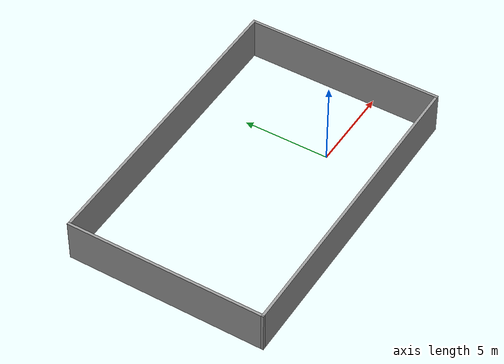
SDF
<?xml version='1.0'?>
<sdf version='1.6'>
  <model name='Wall'>
    <pose frame=''>-3.98523 1.81274 0 0 -0 0</pose>
    <link name='Wall_3'>
      <collision name='Wall_3_Collision'>
        <geometry>
          <box>
            <size>17.75 0.15 2.5</size>
          </box>
        </geometry>
        <pose frame=''>0 0 1.25 0 -0 0</pose>
      </collision>
      <visual name='Wall_3_Visual'>
        <pose frame=''>0 0 1.25 0 -0 0</pose>
        <geometry>
          <box>
            <size>17.75 0.15 2.5</size>
          </box>
        </geometry>
        <material>
          <script>
            <uri>file://media/materials/scripts/gazebo.material</uri>
            <name>Gazebo/Grey</name>
          </script>
          <ambient>1 1 1 1</ambient>
        </material>
        <meta>
          <layer>0</layer>
        </meta>
      </visual>
      <pose frame=''>0 5.675 0 0 -0 0</pose>
    </link>
    <link name='Wall_4'>
      <collision name='Wall_4_Collision'>
        <geometry>
          <box>
            <size>11.5 0.15 2.5</size>
          </box>
        </geometry>
        <pose frame=''>0 0 1.25 0 -0 0</pose>
      </collision>
      <visual name='Wall_4_Visual'>
        <pose frame=''>0 0 1.25 0 -0 0</pose>
        <geometry>
          <box>
            <size>11.5 0.15 2.5</size>
          </box>
        </geometry>
        <material>
          <script>
            <uri>file://media/materials/scripts/gazebo.material</uri>
            <name>Gazebo/Grey</name>
          </script>
          <ambient>1 1 1 1</ambient>
        </material>
        <meta>
          <layer>0</layer>
        </meta>
      </visual>
      <pose frame=''>8.8 0 0 0 -0 -1.5708</pose>
    </link>
    <link name='Wall_5'>
      <collision name='Wall_5_Collision'>
        <geometry>
          <box>
            <size>17.75 0.15 2.5</size>
          </box>
        </geometry>
        <pose frame=''>0 0 1.25 0 -0 0</pose>
      </collision>
      <visual name='Wall_5_Visual'>
        <pose frame=''>0 0 1.25 0 -0 0</pose>
        <geometry>
          <box>
            <size>17.75 0.15 2.5</size>
          </box>
        </geometry>
        <material>
          <script>
            <uri>file://media/materials/scripts/gazebo.material</uri>
            <name>Gazebo/Grey</name>
          </script>
          <ambient>1 1 1 1</ambient>
        </material>
        <meta>
          <layer>0</layer>
        </meta>
      </visual>
      <pose frame=''>0 -5.675 0 0 -0 3.14159</pose>
    </link>
    <link name='Wall_6'>
      <collision name='Wall_6_Collision'>
        <geometry>
          <box>
            <size>11.5 0.15 2.5</size>
          </box>
        </geometry>
        <pose frame=''>0 0 1.25 0 -0 0</pose>
      </collision>
      <visual name='Wall_6_Visual'>
        <pose frame=''>0 0 1.25 0 -0 0</pose>
        <geometry>
          <box>
            <size>11.5 0.15 2.5</size>
          </box>
        </geometry>
        <material>
          <script>
            <uri>file://media/materials/scripts/gazebo.material</uri>
            <name>Gazebo/Grey</name>
          </script>
          <ambient>1 1 1 1</ambient>
        </material>
        <meta>
          <layer>0</layer>
        </meta>
      </visual>
      <pose frame=''>-8.8 0 0 0 -0 1.5708</pose>
    </link>
    <static>1</static>
  </model>
</sdf>
